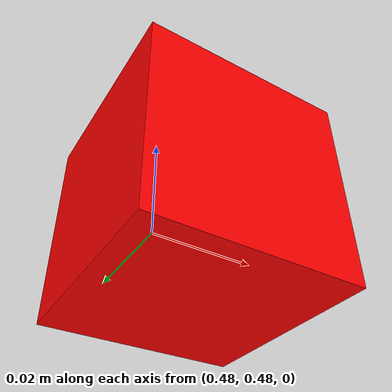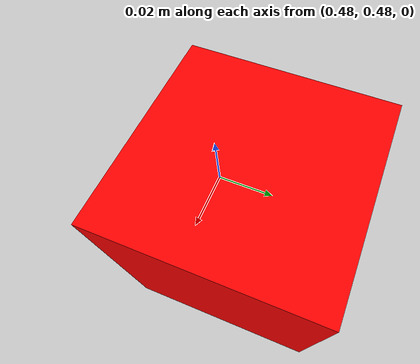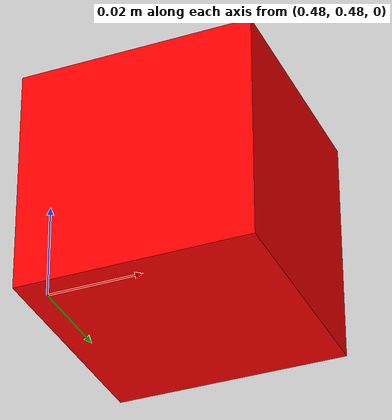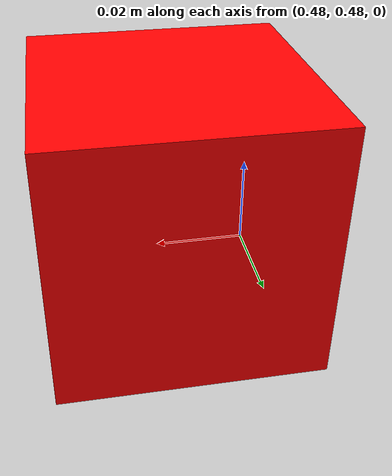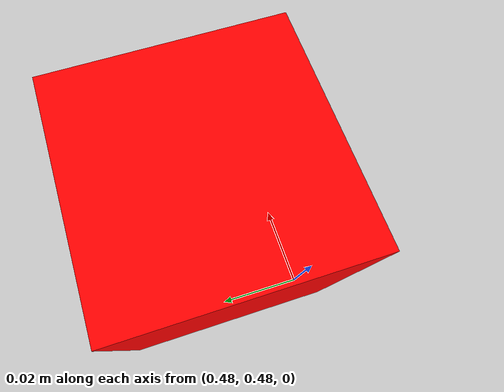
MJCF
<mujoco model="props">
  <asset>
    <material name="cube_red" rgba="1 0 0 1"/>
  </asset>

  <worldbody>
    <body name="object" pos="0.5 0.5 0.025">
      <freejoint/>
      <geom type="box" size="0.025 0.025 0.025" mass="0.05" material="cube_red"
          condim="4" friction="2.5 0.1 0.001" solimp="0.99 0.99 0.01 0.5 2" solref="0.001 1"/>
    </body>
  </worldbody>
</mujoco>
